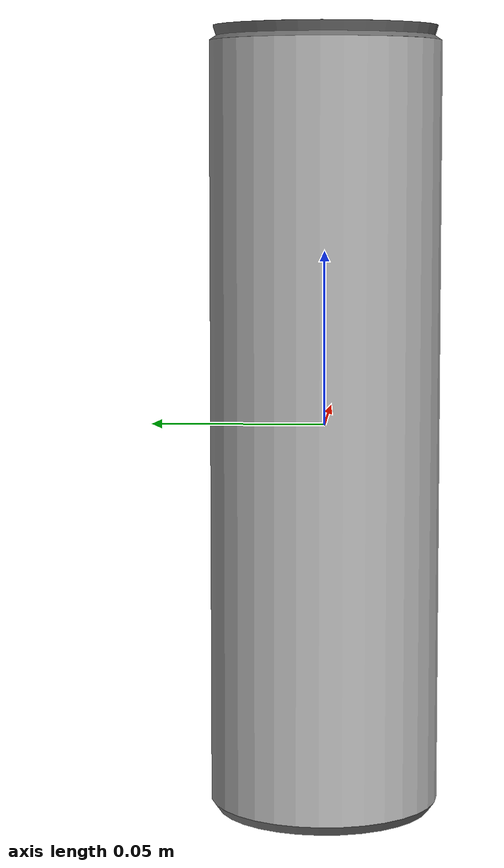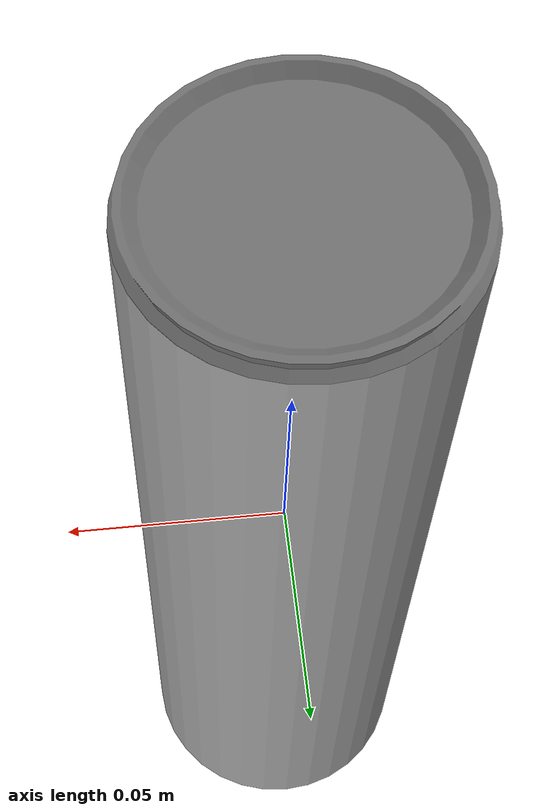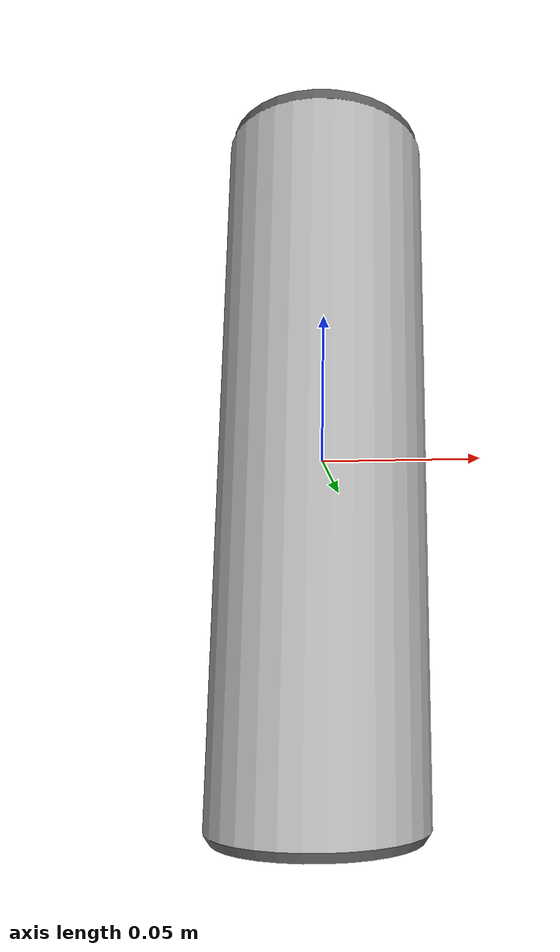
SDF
<?xml version="1.0" ?>
<sdf version="1.4">
    <model name='hsr_pringles'>
      <link name='link'>
        <pose>0 0 0 0 0 0</pose>
        <inertial>
          <mass>0.19</mass>
          <inertia>
            <ixx>0.004491</ixx>
            <ixy>0</ixy>
            <ixz>0</ixz>
            <iyy>0.004491</iyy>
            <iyz>0</iyz>
            <izz>0.000103</izz>
          </inertia>
        </inertial>
        <visual name='hsr_pringles'>
          <pose>0.0 0.0 0.0 0 0 0</pose>
          <geometry>
            <mesh>
              <uri>model://hsr_pringles/meshes/hsr_pringles.dae</uri>
            </mesh>
          </geometry>
          <material/>
        </visual>
        <collision name='hsr_pringles'>
          <pose>0.0 0.0 0.0 0 0 0</pose>
          <geometry>
            <cylinder>
              <radius>0.033</radius>
              <length>0.225</length>
            </cylinder>
          </geometry>
          <max_contacts>10</max_contacts>
          <surface>
            <bounce>
              <restitution_coefficient>0.2</restitution_coefficient>
              <threshold>0</threshold>
            </bounce>
            <friction>
              <ode/>
            </friction>
            <contact>
              <ode>
                <max_vel>10</max_vel>
              </ode>
            </contact>
          </surface>
        </collision>
        <velocity_decay>
          <linear>0</linear>
          <angular>0</angular>
        </velocity_decay>
        <self_collide>0</self_collide>
        <kinematic>0</kinematic>
        <gravity>1</gravity>
      </link>
      <static>0</static>
    </model>
</sdf>
